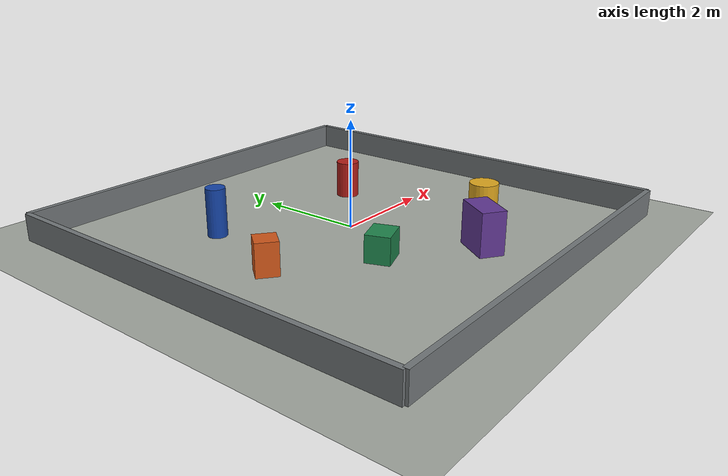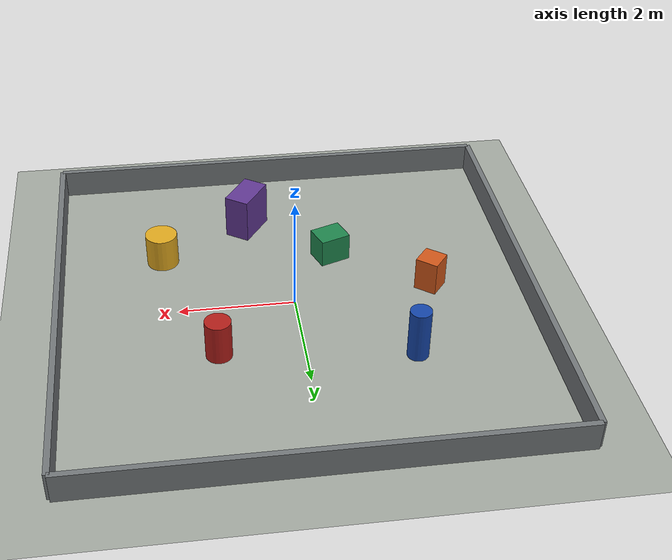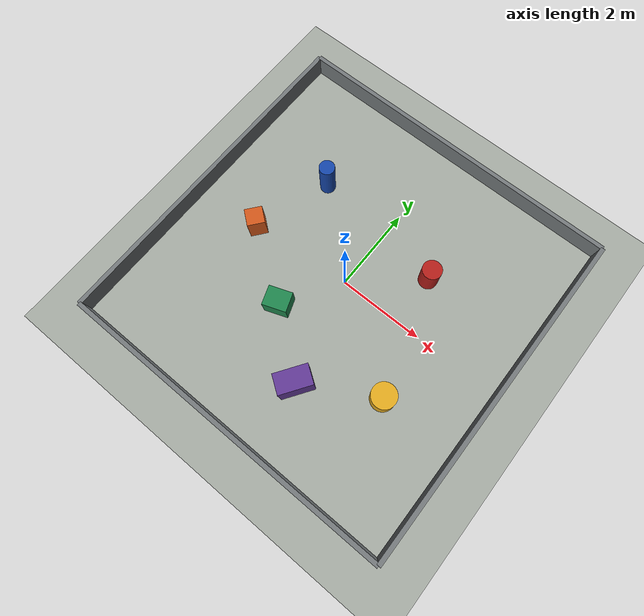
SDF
<?xml version="1.0" ?>
<sdf version="1.9">
  <world name="slam_test_world">
    <physics name="1ms" type="ignored">
      <max_step_size>0.001</max_step_size>
      <real_time_factor>1.0</real_time_factor>
    </physics>

    <plugin
      filename="gz-sim-physics-system"
      name="gz::sim::systems::Physics" />
    <plugin
      filename="gz-sim-scene-broadcaster-system"
      name="gz::sim::systems::SceneBroadcaster" />
    <plugin
      filename="gz-sim-user-commands-system"
      name="gz::sim::systems::UserCommands" />
    <plugin
      filename="gz-sim-sensors-system"
      name="gz::sim::systems::Sensors">
      <render_engine>ogre2</render_engine>
    </plugin>
    <plugin filename="gz-sim-imu-system"
        name="gz::sim::systems::Imu">
    </plugin>

    <light name="sun" type="directional">
      <cast_shadows>true</cast_shadows>
      <pose>0 0 10 0 0 0</pose>
      <diffuse>0.8 0.8 0.8 1</diffuse>
      <specular>0.2 0.2 0.2 1</specular>
      <attenuation>
        <range>1000</range>
        <constant>0.9</constant>
        <linear>0.01</linear>
        <quadratic>0.001</quadratic>
      </attenuation>
      <direction>-0.5 0.1 -0.9</direction>
    </light>

    <model name="ground_plane">
      <static>true</static>
      <link name="link">
        <collision name="collision">
          <geometry>
            <plane>
              <normal>0 0 1</normal>
              <size>16 16</size>
            </plane>
          </geometry>
        </collision>
        <visual name="visual">
          <geometry>
            <plane>
              <normal>0 0 1</normal>
              <size>16 16</size>
            </plane>
          </geometry>
          <material>
            <ambient>0.64 0.66 0.63 1</ambient>
            <diffuse>0.64 0.66 0.63 1</diffuse>
          </material>
        </visual>
      </link>
    </model>

    <model name="arena_boundary_north">
      <static>true</static>
      <pose>0 4.0 0.25 0 0 0</pose>
      <link name="link">
        <collision name="collision">
          <geometry><box><size>8.0 0.10 0.50</size></box></geometry>
        </collision>
        <visual name="visual">
          <geometry><box><size>8.0 0.10 0.50</size></box></geometry>
          <material><ambient>0.45 0.47 0.48 1</ambient><diffuse>0.45 0.47 0.48 1</diffuse></material>
        </visual>
      </link>
    </model>

    <model name="arena_boundary_south">
      <static>true</static>
      <pose>0 -4.0 0.25 0 0 0</pose>
      <link name="link">
        <collision name="collision">
          <geometry><box><size>8.0 0.10 0.50</size></box></geometry>
        </collision>
        <visual name="visual">
          <geometry><box><size>8.0 0.10 0.50</size></box></geometry>
          <material><ambient>0.45 0.47 0.48 1</ambient><diffuse>0.45 0.47 0.48 1</diffuse></material>
        </visual>
      </link>
    </model>

    <model name="arena_boundary_east">
      <static>true</static>
      <pose>4.0 0 0.25 0 0 0</pose>
      <link name="link">
        <collision name="collision">
          <geometry><box><size>0.10 8.0 0.50</size></box></geometry>
        </collision>
        <visual name="visual">
          <geometry><box><size>0.10 8.0 0.50</size></box></geometry>
          <material><ambient>0.45 0.47 0.48 1</ambient><diffuse>0.45 0.47 0.48 1</diffuse></material>
        </visual>
      </link>
    </model>

    <model name="arena_boundary_west">
      <static>true</static>
      <pose>-4.0 0 0.25 0 0 0</pose>
      <link name="link">
        <collision name="collision">
          <geometry><box><size>0.10 8.0 0.50</size></box></geometry>
        </collision>
        <visual name="visual">
          <geometry><box><size>0.10 8.0 0.50</size></box></geometry>
          <material><ambient>0.45 0.47 0.48 1</ambient><diffuse>0.45 0.47 0.48 1</diffuse></material>
        </visual>
      </link>
    </model>

    <model name="cylinder_red">
      <static>true</static>
      <pose>1.4 1.2 0.35 0 0 0</pose>
      <link name="link">
        <collision name="collision">
          <geometry><cylinder><radius>0.22</radius><length>0.70</length></cylinder></geometry>
        </collision>
        <visual name="visual">
          <geometry><cylinder><radius>0.22</radius><length>0.70</length></cylinder></geometry>
          <material><ambient>0.70 0.12 0.10 1</ambient><diffuse>0.70 0.12 0.10 1</diffuse></material>
        </visual>
      </link>
    </model>

    <model name="cylinder_blue">
      <static>true</static>
      <pose>-1.8 1.6 0.45 0 0 0</pose>
      <link name="link">
        <collision name="collision">
          <geometry><cylinder><radius>0.18</radius><length>0.90</length></cylinder></geometry>
        </collision>
        <visual name="visual">
          <geometry><cylinder><radius>0.18</radius><length>0.90</length></cylinder></geometry>
          <material><ambient>0.08 0.27 0.66 1</ambient><diffuse>0.08 0.27 0.66 1</diffuse></material>
        </visual>
      </link>
    </model>

    <model name="cylinder_yellow">
      <static>true</static>
      <pose>2.2 -1.5 0.30 0 0 0</pose>
      <link name="link">
        <collision name="collision">
          <geometry><cylinder><radius>0.28</radius><length>0.60</length></cylinder></geometry>
        </collision>
        <visual name="visual">
          <geometry><cylinder><radius>0.28</radius><length>0.60</length></cylinder></geometry>
          <material><ambient>0.88 0.66 0.12 1</ambient><diffuse>0.88 0.66 0.12 1</diffuse></material>
        </visual>
      </link>
    </model>

    <model name="box_green">
      <static>true</static>
      <pose>-0.8 -1.3 0.25 0 0 0.35</pose>
      <link name="link">
        <collision name="collision">
          <geometry><box><size>0.55 0.45 0.50</size></box></geometry>
        </collision>
        <visual name="visual">
          <geometry><box><size>0.55 0.45 0.50</size></box></geometry>
          <material><ambient>0.12 0.52 0.30 1</ambient><diffuse>0.12 0.52 0.30 1</diffuse></material>
        </visual>
      </link>
    </model>

    <model name="box_purple">
      <static>true</static>
      <pose>0.6 -2.4 0.40 0 0 -0.6</pose>
      <link name="link">
        <collision name="collision">
          <geometry><box><size>0.45 0.75 0.80</size></box></geometry>
        </collision>
        <visual name="visual">
          <geometry><box><size>0.45 0.75 0.80</size></box></geometry>
          <material><ambient>0.38 0.22 0.58 1</ambient><diffuse>0.38 0.22 0.58 1</diffuse></material>
        </visual>
      </link>
    </model>

    <model name="box_orange">
      <static>true</static>
      <pose>-2.4 -0.2 0.30 0 0 0.9</pose>
      <link name="link">
        <collision name="collision">
          <geometry><box><size>0.40 0.40 0.60</size></box></geometry>
        </collision>
        <visual name="visual">
          <geometry><box><size>0.40 0.40 0.60</size></box></geometry>
          <material><ambient>0.82 0.34 0.10 1</ambient><diffuse>0.82 0.34 0.10 1</diffuse></material>
        </visual>
      </link>
    </model>

  </world>
</sdf>
